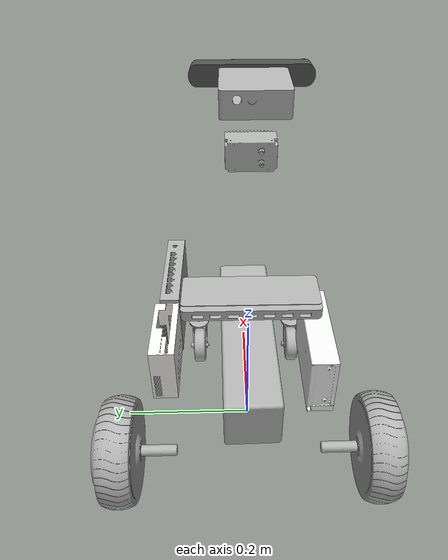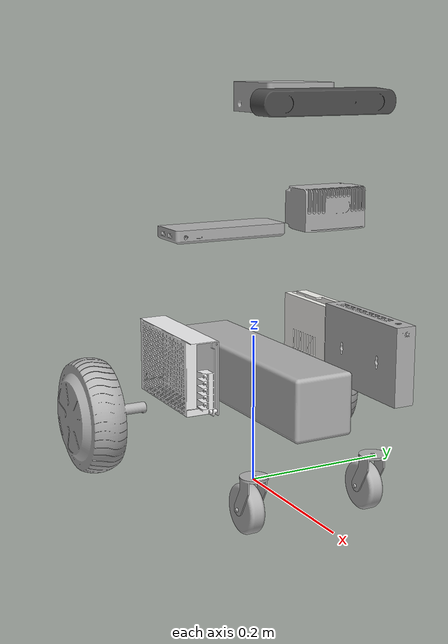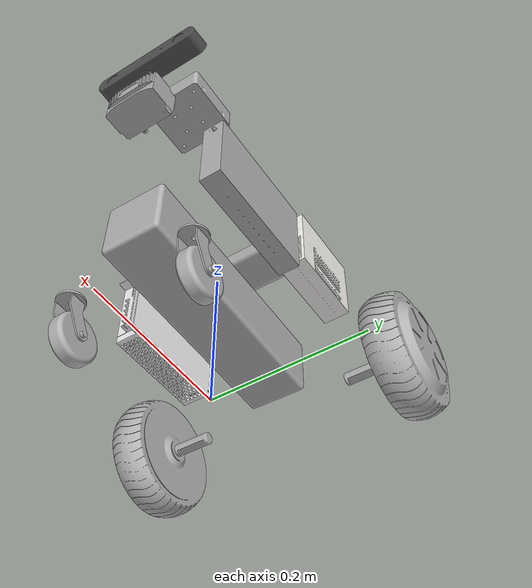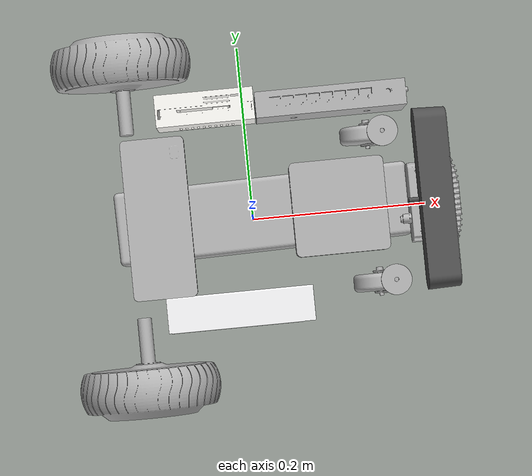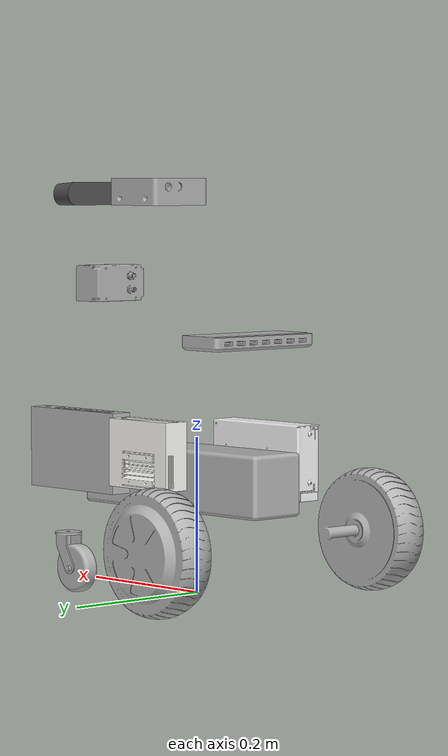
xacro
<?xml version="1.0" ?>
<robot name="engix" xmlns:xacro="http://www.ros.org/wiki/xacro">

<xacro:include filename="$(find engix_description)/urdf/materials.xacro" />
<xacro:include filename="$(find engix_description)/urdf/engix.trans" />
<xacro:include filename="$(find engix_description)/urdf/engix.gazebo" />
<link name="base_link">
  <inertial>
    <origin rpy="0 0 0" xyz="0.0005263550102558459 -0.0008435206011111315 0.2088531479687758"/>
    <mass value="19.33842087101984"/>
    <inertia ixx="0.298693" ixy="0.003154" ixz="-0.020052" iyy="0.45471" iyz="0.003425" izz="0.326894"/>
  </inertial>
  <visual>
    <origin rpy="0 0 0" xyz="0 0 0"/>
    <geometry>
      <mesh filename="package://engix_description/meshes/base_link.stl" scale="0.001 0.001 0.001"/>
    </geometry>
    <material name="silver_default"/>
  </visual>
  <collision>
    <origin rpy="0 0 0" xyz="0 0 0"/>
    <geometry>
      <mesh filename="package://engix_description/meshes/base_link.stl" scale="0.001 0.001 0.001"/>
    </geometry>
  </collision>
</link>

<link name="lwheel_1">
  <inertial>
    <origin rpy="0 0 0" xyz="9.457707256244063e-09 0.03585438960934953 7.241215550846114e-06"/>
    <mass value="0.9580193019383823"/>
    <inertia ixx="0.001585" ixy="-0.0" ixz="0.0" iyy="0.002703" iyz="0.0" izz="0.001585"/>
  </inertial>
  <visual>
    <origin rpy="0 0 0" xyz="0.133355 -0.150817 -0.079162"/>
    <geometry>
      <mesh filename="package://engix_description/meshes/lwheel_1.stl" scale="0.001 0.001 0.001"/>
    </geometry>
    <material name="silver_default"/>
  </visual>
  <collision>
    <origin rpy="0 0 0" xyz="0.133355 -0.150817 -0.079162"/>
    <geometry>
      <mesh filename="package://engix_description/meshes/lwheel_1.stl" scale="0.001 0.001 0.001"/>
    </geometry>
  </collision>
</link>

<link name="rwheel_1">
  <inertial>
    <origin rpy="0 0 0" xyz="-6.147258196920191e-08 -0.035854161349757635 6.622358018903984e-06"/>
    <mass value="0.9580297510218192"/>
    <inertia ixx="0.001585" ixy="-0.0" ixz="0.0" iyy="0.002703" iyz="-0.0" izz="0.001585"/>
  </inertial>
  <visual>
    <origin rpy="0 0 0" xyz="0.133355 0.146183 -0.079162"/>
    <geometry>
      <mesh filename="package://engix_description/meshes/rwheel_1.stl" scale="0.001 0.001 0.001"/>
    </geometry>
    <material name="silver_default"/>
  </visual>
  <collision>
    <origin rpy="0 0 0" xyz="0.133355 0.146183 -0.079162"/>
    <geometry>
      <mesh filename="package://engix_description/meshes/rwheel_1.stl" scale="0.001 0.001 0.001"/>
    </geometry>
  </collision>
</link>

<link name="ZED2_1">
  <inertial>
    <origin rpy="0 0 0" xyz="-0.000581501231995768 -0.018000727408692088 0.014361531099989666"/>
    <mass value="1.195261039361359"/>
    <inertia ixx="0.002923" ixy="0.0" ixz="0.0" iyy="0.000179" iyz="-0.0" izz="0.002942"/>
  </inertial>
  <visual>
    <origin rpy="0 0 0" xyz="-0.176645 -0.00992 -0.4957"/>
    <geometry>
      <mesh filename="package://engix_description/meshes/ZED2_1.stl" scale="0.001 0.001 0.001"/>
    </geometry>
    <material name="plate"/>
  </visual>
  <collision>
    <origin rpy="0 0 0" xyz="-0.176645 -0.00992 -0.4957"/>
    <geometry>
      <mesh filename="package://engix_description/meshes/ZED2_1.stl" scale="0.001 0.001 0.001"/>
    </geometry>
  </collision>
</link>

<link name="dc_dc_1">
  <inertial>
    <origin rpy="0 0 0" xyz="-0.046651616474644206 0.016238979027111536 -0.04632552446736696"/>
    <mass value="0.518313971080152"/>
    <inertia ixx="0.000557" ixy="-1.6e-05" ixz="8e-05" iyy="0.00183" iyz="2.5e-05" izz="0.00141"/>
  </inertial>
  <visual>
    <origin rpy="0 0 0" xyz="-0.027645 0.10808 -0.2157"/>
    <geometry>
      <mesh filename="package://engix_description/meshes/dc_dc_1.stl" scale="0.001 0.001 0.001"/>
    </geometry>
    <material name="aluminum_satin"/>
  </visual>
  <collision>
    <origin rpy="0 0 0" xyz="-0.027645 0.10808 -0.2157"/>
    <geometry>
      <mesh filename="package://engix_description/meshes/dc_dc_1.stl" scale="0.001 0.001 0.001"/>
    </geometry>
  </collision>
</link>

<link name="battery_1">
  <inertial>
    <origin rpy="0 0 0" xyz="-3.679761519433805e-07 -0.014999967744423545 0.04000000067270583"/>
    <mass value="15.997252151608594"/>
    <inertia ixx="0.016973" ixy="-0.002227" ixz="0.0" iyy="0.14451" iyz="0.0" izz="0.144549"/>
  </inertial>
  <visual>
    <origin rpy="0 0 0" xyz="-0.011102 -0.015765 -0.1077"/>
    <geometry>
      <mesh filename="package://engix_description/meshes/battery_1.stl" scale="0.001 0.001 0.001"/>
    </geometry>
    <material name="silver_default"/>
  </visual>
  <collision>
    <origin rpy="0 0 0" xyz="-0.011102 -0.015765 -0.1077"/>
    <geometry>
      <mesh filename="package://engix_description/meshes/battery_1.stl" scale="0.001 0.001 0.001"/>
    </geometry>
  </collision>
</link>

<link name="jetson_nano_1">
  <inertial>
    <origin rpy="0 0 0" xyz="-0.02155296749521362 0.017997742630733643 -0.033483760221581144"/>
    <mass value="0.6108601973933899"/>
    <inertia ixx="0.000569" ixy="-0.0" ixz="-2e-06" iyy="0.00115" iyz="5e-06" izz="0.000794"/>
  </inertial>
  <visual>
    <origin rpy="0 0 0" xyz="0.02108 -0.10192 -0.21904"/>
    <geometry>
      <mesh filename="package://engix_description/meshes/jetson_nano_1.stl" scale="0.001 0.001 0.001"/>
    </geometry>
    <material name="paint_metallic_silver"/>
  </visual>
  <collision>
    <origin rpy="0 0 0" xyz="0.02108 -0.10192 -0.21904"/>
    <geometry>
      <mesh filename="package://engix_description/meshes/jetson_nano_1.stl" scale="0.001 0.001 0.001"/>
    </geometry>
  </collision>
</link>

<link name="lan_1">
  <inertial>
    <origin rpy="0 0 0" xyz="0.016145587504214687 0.013968039747456681 -0.030801865689642383"/>
    <mass value="3.5643139184346726"/>
    <inertia ixx="0.003249" ixy="-2e-06" ixz="-2.4e-05" iyy="0.010873" iyz="8e-06" izz="0.008095"/>
  </inertial>
  <visual>
    <origin rpy="0 0 0" xyz="-0.07857 -0.10192 -0.2157"/>
    <geometry>
      <mesh filename="package://engix_description/meshes/lan_1.stl" scale="0.001 0.001 0.001"/>
    </geometry>
    <material name="silver_default"/>
  </visual>
  <collision>
    <origin rpy="0 0 0" xyz="-0.07857 -0.10192 -0.2157"/>
    <geometry>
      <mesh filename="package://engix_description/meshes/lan_1.stl" scale="0.001 0.001 0.001"/>
    </geometry>
  </collision>
</link>

<link name="gps_1">
  <inertial>
    <origin rpy="0 0 0" xyz="-0.02876936503646009 0.0002886535867022977 0.013167397084734855"/>
    <mass value="1.243058035704335"/>
    <inertia ixx="0.001107" ixy="2e-06" ixz="-2e-06" iyy="0.001111" iyz="3e-06" izz="0.001946"/>
  </inertial>
  <visual>
    <origin rpy="0 0 0" xyz="-0.112558 0.00808 -0.4957"/>
    <geometry>
      <mesh filename="package://engix_description/meshes/gps_1.stl" scale="0.001 0.001 0.001"/>
    </geometry>
    <material name="silver_default"/>
  </visual>
  <collision>
    <origin rpy="0 0 0" xyz="-0.112558 0.00808 -0.4957"/>
    <geometry>
      <mesh filename="package://engix_description/meshes/gps_1.stl" scale="0.001 0.001 0.001"/>
    </geometry>
  </collision>
</link>

<link name="usb_hub_1">
  <inertial>
    <origin rpy="0 0 0" xyz="-0.01905288728759609 0.0007634997220654879 0.009321451666140235"/>
    <mass value="1.4885537265302118"/>
    <inertia ixx="0.003391" ixy="-4e-06" ixz="-3e-06" iyy="0.000548" iyz="-0.0" izz="0.003854"/>
  </inertial>
  <visual>
    <origin rpy="0 0 0" xyz="0.077355 -0.00192 -0.3177"/>
    <geometry>
      <mesh filename="package://engix_description/meshes/usb_hub_1.stl" scale="0.001 0.001 0.001"/>
    </geometry>
    <material name="silver_default"/>
  </visual>
  <collision>
    <origin rpy="0 0 0" xyz="0.077355 -0.00192 -0.3177"/>
    <geometry>
      <mesh filename="package://engix_description/meshes/usb_hub_1.stl" scale="0.001 0.001 0.001"/>
    </geometry>
  </collision>
</link>

<link name="lidar_tof_1">
  <inertial>
    <origin rpy="0 0 0" xyz="0.022601193791078528 0.0369098575008472 0.024728884462763667"/>
    <mass value="0.16629989164051073"/>
    <inertia ixx="0.000113" ixy="-0.0" ixz="1e-06" iyy="5.9e-05" iyz="0.0" izz="0.000113"/>
  </inertial>
  <visual>
    <origin rpy="0 0 0" xyz="-0.157645 0.04512 -0.3677"/>
    <geometry>
      <mesh filename="package://engix_description/meshes/lidar_tof_1.stl" scale="0.001 0.001 0.001"/>
    </geometry>
    <material name="silver_default"/>
  </visual>
  <collision>
    <origin rpy="0 0 0" xyz="-0.157645 0.04512 -0.3677"/>
    <geometry>
      <mesh filename="package://engix_description/meshes/lidar_tof_1.stl" scale="0.001 0.001 0.001"/>
    </geometry>
  </collision>
</link>

<link name="caster_right_1">
  <inertial>
    <origin rpy="0 0 0" xyz="-0.004690059190597118 -0.00031884478947080686 -0.01885204625585646"/>
    <mass value="0.05740836735618817"/>
    <inertia ixx="2.5e-05" ixy="0.0" ixz="-6e-06" iyy="2.3e-05" iyz="0.0" izz="1.2e-05"/>
  </inertial>
  <visual>
    <origin rpy="0 0 0" xyz="-0.155465 0.084832 -0.072019"/>
    <geometry>
      <mesh filename="package://engix_description/meshes/caster_right_1.stl" scale="0.001 0.001 0.001"/>
    </geometry>
    <material name="silver_default"/>
  </visual>
  <collision>
    <origin rpy="0 0 0" xyz="-0.155465 0.084832 -0.072019"/>
    <geometry>
      <mesh filename="package://engix_description/meshes/caster_right_1.stl" scale="0.001 0.001 0.001"/>
    </geometry>
  </collision>
</link>

<link name="caster_left_1">
  <inertial>
    <origin rpy="0 0 0" xyz="-0.004690059190596646 -0.00031884478947068196 -0.01885204625585646"/>
    <mass value="0.057408367356188116"/>
    <inertia ixx="2.5e-05" ixy="0.0" ixz="-6e-06" iyy="2.3e-05" iyz="0.0" izz="1.2e-05"/>
  </inertial>
  <visual>
    <origin rpy="0 0 0" xyz="-0.155465 -0.085168 -0.071999"/>
    <geometry>
      <mesh filename="package://engix_description/meshes/caster_left_1.stl" scale="0.001 0.001 0.001"/>
    </geometry>
    <material name="silver_default"/>
  </visual>
  <collision>
    <origin rpy="0 0 0" xyz="-0.155465 -0.085168 -0.071999"/>
    <geometry>
      <mesh filename="package://engix_description/meshes/caster_left_1.stl" scale="0.001 0.001 0.001"/>
    </geometry>
  </collision>
</link>

<link name="caster_wheel_left_1">
  <inertial>
    <origin rpy="0 0 0" xyz="1.9061138764597807e-07 0.0014995854065302239 1.7385093787486428e-07"/>
    <mass value="0.06150125598785353"/>
    <inertia ixx="1.6e-05" ixy="-0.0" ixz="-0.0" iyy="2.9e-05" iyz="-0.0" izz="1.6e-05"/>
  </inertial>
  <visual>
    <origin rpy="0 0 0" xyz="-0.139465 -0.082668 -0.025999"/>
    <geometry>
      <mesh filename="package://engix_description/meshes/caster_wheel_left_1.stl" scale="0.001 0.001 0.001"/>
    </geometry>
    <material name="silver_default"/>
  </visual>
  <collision>
    <origin rpy="0 0 0" xyz="-0.139465 -0.082668 -0.025999"/>
    <geometry>
      <mesh filename="package://engix_description/meshes/caster_wheel_left_1.stl" scale="0.001 0.001 0.001"/>
    </geometry>
  </collision>
</link>

<link name="caster_wheel_right_1">
  <inertial>
    <origin rpy="0 0 0" xyz="1.905032832039133e-07 0.0014995854065301545 1.78805265319687e-07"/>
    <mass value="0.06150125598785355"/>
    <inertia ixx="1.6e-05" ixy="0.0" ixz="0.0" iyy="2.9e-05" iyz="-0.0" izz="1.6e-05"/>
  </inertial>
  <visual>
    <origin rpy="0 0 0" xyz="-0.139465 0.087332 -0.026019"/>
    <geometry>
      <mesh filename="package://engix_description/meshes/caster_wheel_right_1.stl" scale="0.001 0.001 0.001"/>
    </geometry>
    <material name="silver_default"/>
  </visual>
  <collision>
    <origin rpy="0 0 0" xyz="-0.139465 0.087332 -0.026019"/>
    <geometry>
      <mesh filename="package://engix_description/meshes/caster_wheel_right_1.stl" scale="0.001 0.001 0.001"/>
    </geometry>
  </collision>
</link>

<joint name="left_wheel" type="continuous">
  <origin rpy="0 0 0" xyz="-0.133355 0.150817 0.079162"/>
  <parent link="base_link"/>
  <child link="lwheel_1"/>
  <axis xyz="0.0 1.0 -0.0"/>
</joint>

<joint name="right_wheel" type="continuous">
  <origin rpy="0 0 0" xyz="-0.133355 -0.146183 0.079162"/>
  <parent link="base_link"/>
  <child link="rwheel_1"/>
  <axis xyz="0.0 1.0 -0.0"/>
</joint>

<joint name="ZED2" type="fixed">
  <origin rpy="0 0 0" xyz="0.176645 0.00992 0.4957"/>
  <parent link="base_link"/>
  <child link="ZED2_1"/>
</joint>

<joint name="dc_dc" type="fixed">
  <origin rpy="0 0 0" xyz="0.027645 -0.10808 0.2157"/>
  <parent link="base_link"/>
  <child link="dc_dc_1"/>
</joint>

<joint name="battery" type="fixed">
  <origin rpy="0 0 0" xyz="0.011102 0.015765 0.1077"/>
  <parent link="base_link"/>
  <child link="battery_1"/>
</joint>

<joint name="jetson_nano" type="fixed">
  <origin rpy="0 0 0" xyz="-0.02108 0.10192 0.21904"/>
  <parent link="base_link"/>
  <child link="jetson_nano_1"/>
</joint>

<joint name="lan" type="fixed">
  <origin rpy="0 0 0" xyz="0.07857 0.10192 0.2157"/>
  <parent link="base_link"/>
  <child link="lan_1"/>
</joint>

<joint name="gps" type="fixed">
  <origin rpy="0 0 0" xyz="0.112558 -0.00808 0.4957"/>
  <parent link="base_link"/>
  <child link="gps_1"/>
</joint>

<joint name="usb_hub" type="fixed">
  <origin rpy="0 0 0" xyz="-0.077355 0.00192 0.3177"/>
  <parent link="base_link"/>
  <child link="usb_hub_1"/>
</joint>

<joint name="lidar_tof" type="fixed">
  <origin rpy="0 0 0" xyz="0.157645 -0.04512 0.3677"/>
  <parent link="base_link"/>
  <child link="lidar_tof_1"/>
</joint>

<joint name="caster_right" type="continuous">
  <origin rpy="0 0 0" xyz="0.155465 -0.084832 0.072019"/>
  <parent link="base_link"/>
  <child link="caster_right_1"/>
  <axis xyz="0.0 0.0 -1.0"/>
</joint>

<joint name="caster_left" type="continuous">
  <origin rpy="0 0 0" xyz="0.155465 0.085168 0.071999"/>
  <parent link="base_link"/>
  <child link="caster_left_1"/>
  <axis xyz="0.0 0.0 -1.0"/>
</joint>

<joint name="caster_wheel_left" type="continuous">
  <origin rpy="0 0 0" xyz="-0.016 -0.0025 -0.046"/>
  <parent link="caster_left_1"/>
  <child link="caster_wheel_left_1"/>
  <axis xyz="-0.0 -1.0 0.0"/>
</joint>

<joint name="caster_wheel_right" type="continuous">
  <origin rpy="0 0 0" xyz="-0.016 -0.0025 -0.046"/>
  <parent link="caster_right_1"/>
  <child link="caster_wheel_right_1"/>
  <axis xyz="-0.0 -1.0 0.0"/>
</joint>

</robot>

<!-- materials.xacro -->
<robot name="engix" xmlns:xacro="http://www.ros.org/wiki/xacro" >

<material name="silver_default">
  <color rgba="0.700 0.700 0.700 1.000"/>
</material>
<material name="plate">
  <color rgba="0.3137254901960784 0.3137254901960784 0.3137254901960784 1.0"/>
</material>
<material name="paint_metallic_silver">
  <color rgba="0.984313725490196 0.9803921568627451 0.9607843137254902 1.0"/>
</material>
<material name="aluminum_satin">
  <color rgba="0.9607843137254902 0.9607843137254902 0.9647058823529412 1.0"/>
</material>

</robot>

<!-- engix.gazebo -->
<robot name="engix" xmlns:xacro="http://www.ros.org/wiki/xacro" >

<xacro:property name="body_color" value="Gazebo/Silver" />

<gazebo>
  <plugin name="differential_drive_controller" filename="libgazebo_ros_diff_drive.so">
    <legacyMode>false</legacyMode>
    <alwaysOn>true</alwaysOn>
    <publishWheelTF>true</publishWheelTF>
    <publishTf>1</publishTf>
    <publishWheelJointState>true</publishWheelJointState>
    <updateRate>100.0</updateRate>
    <leftJoint>left_wheel_joint</leftJoint>
    <rightJoint>right_wheel_joint</rightJoint>
    <wheelSeparation>0.4</wheelSeparation>
    <wheelDiameter>0.52</wheelDiameter>
    <wheelAcceleration>1.0</wheelAcceleration>
    <torque>20</torque>
    <commandTopic>/part2_cmr/cmd_vel</commandTopic>
    <odometryTopic>odom</odometryTopic>
    <odometryFrame>odom</odometryFrame>
    <robotBaseFrame>base_link</robotBaseFrame>
  </plugin>
</gazebo>
<gazebo reference="base_link">
  <material>${body_color}</material>
  <mu1>0.2</mu1>
  <mu2>0.2</mu2>
  <selfCollide>true</selfCollide>
  <gravity>true</gravity>
</gazebo>

<gazebo reference="left_wheel">
  <material>${body_color}</material>
  <mu1>0.2</mu1>
  <mu2>0.2</mu2>
  <selfCollide>true</selfCollide>
</gazebo>

<gazebo reference="right_wheel">
  <material>${body_color}</material>
  <mu1>0.2</mu1>
  <mu2>0.2</mu2>
  <selfCollide>true</selfCollide>
</gazebo>

<gazebo reference="ZED2">
  <material>black</material>
  <mu1>0.2</mu1>
  <mu2>0.2</mu2>
  <selfCollide>true</selfCollide>
</gazebo>

<gazebo reference="right_caster">
  <material>${body_color}</material>
  <mu1>0.2</mu1>
  <mu2>0.2</mu2>
  <selfCollide>true</selfCollide>
</gazebo>

<gazebo reference="left_caster">
  <material>${body_color}</material>
  <mu1>0.2</mu1>
  <mu2>0.2</mu2>
  <selfCollide>true</selfCollide>
</gazebo>

</robot>
